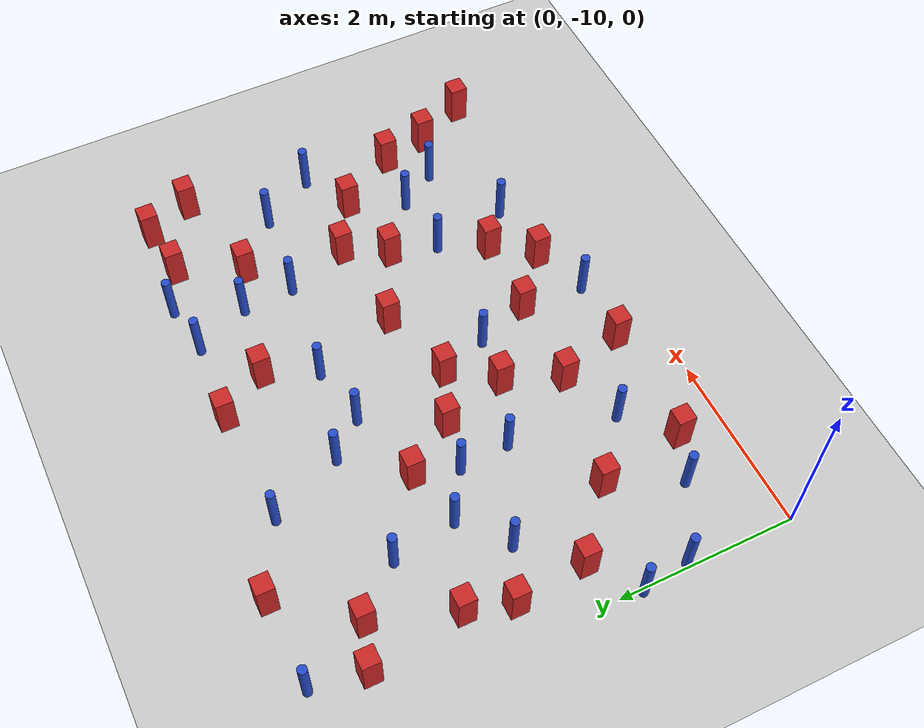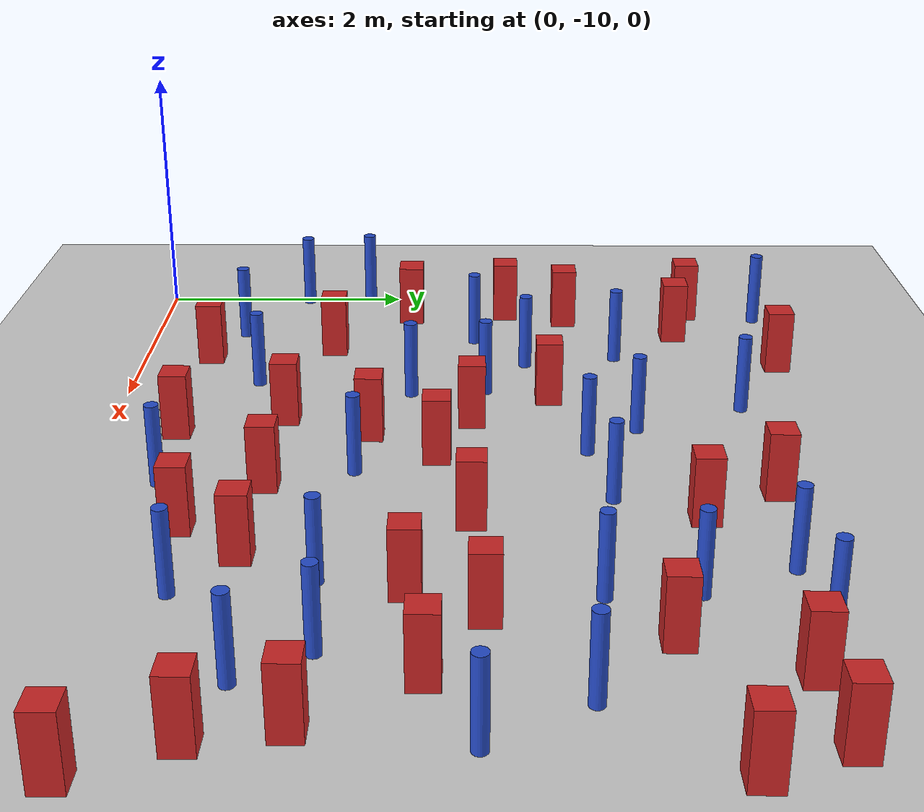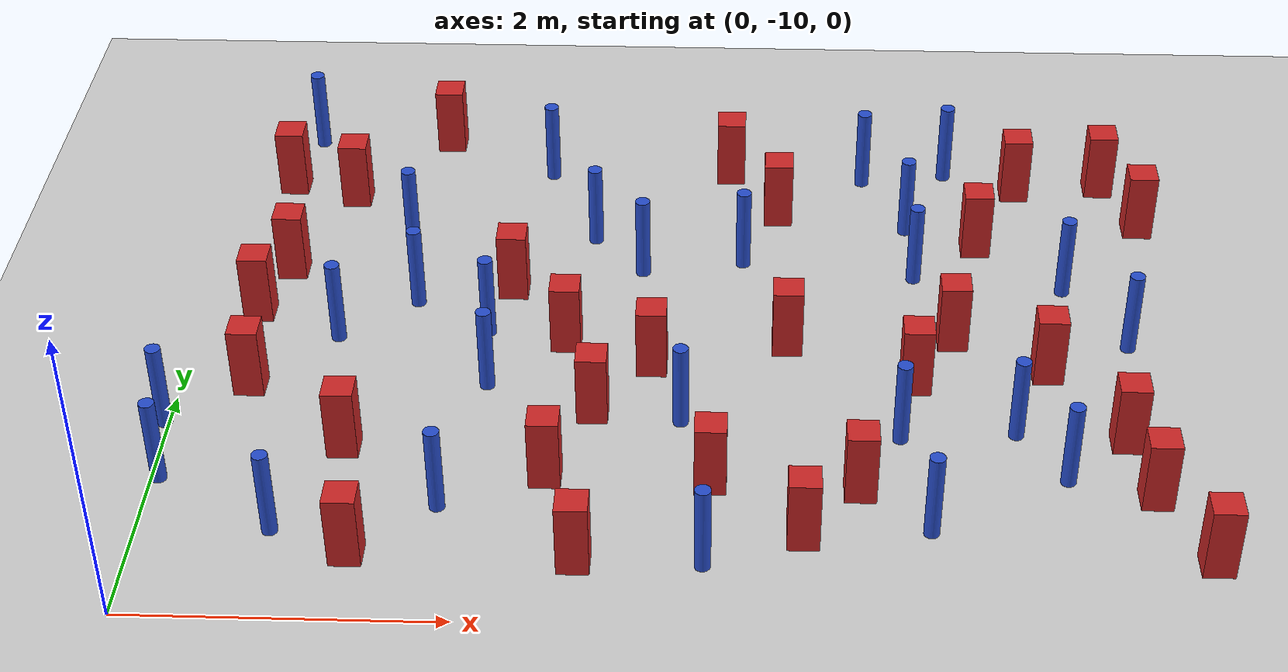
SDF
<sdf version="1.6">
 <world name="default">
  <model name="ground_plane">
   <static>1</static>
   <link name="link">
    <collision name="collision">
     <geometry><plane><normal>0 0 1</normal><size>100 100</size></plane></geometry>
     <surface><friction><ode><mu>100</mu><mu2>50</mu2></ode></friction></surface>
    </collision>
    <visual name="visual">
     <cast_shadows>0</cast_shadows>
     <geometry><plane><normal>0 0 1</normal><size>100 100</size></plane></geometry>
     <material>
      <ambient>1.0 1.0 1.0 1.0</ambient>
      <diffuse>0.8 0.8 0.8 1.0</diffuse>
      <specular>0.01 0.01 0.01 1.000000</specular>
     </material>
    </visual>
   </link>
  </model>
  <model name="square_post_obstacle1">
   <static>true</static>
   <pose>0.525106642225 -6.55552689009 8.22691968438e-08 7.22125133819e-06 -7.54495500217e-07 2.29674213826e-05</pose>
   <link name="link">
    <pose>0 0 0.25 0 -0 0</pose>
    <inertial>
     <mass>100</mass>
     <inertia>
      <ixx>0.166667</ixx>
      <ixy>0</ixy>
      <ixz>0</ixz>
      <iyy>0.166667</iyy>
      <iyz>0</iyz>
      <izz>0.166667</izz>
     </inertia>
    </inertial>
    <collision name="collision"><geometry><box><size>.2 .2 .5</size></box></geometry></collision>
    <visual name="visual">
     <geometry><box><size>.2 .2 .5</size></box></geometry>
     <material>
      <script><name>Gazebo/Red</name><uri>file://media/materials/scripts/gazebo.material</uri></script>
     </material>
    </visual>
   </link>
  </model>
  <model name="square_post_obstacle6">
   <static>true</static>
   <pose>0.843098504361 -5.64925832807 8.22691968438e-08 7.22125133819e-06 -7.54495500217e-07 2.29674213826e-05</pose>
   <link name="link">
    <pose>0 0 0.25 0 -0 0</pose>
    <inertial>
     <mass>100</mass>
     <inertia>
      <ixx>0.166667</ixx>
      <ixy>0</ixy>
      <ixz>0</ixz>
      <iyy>0.166667</iyy>
      <iyz>0</iyz>
      <izz>0.166667</izz>
     </inertia>
    </inertial>
    <collision name="collision"><geometry><box><size>.2 .2 .5</size></box></geometry></collision>
    <visual name="visual">
     <geometry><box><size>.2 .2 .5</size></box></geometry>
     <material>
      <script><name>Gazebo/Red</name><uri>file://media/materials/scripts/gazebo.material</uri></script>
     </material>
    </visual>
   </link>
  </model>
  <model name="pole_obstacle6">
   <static>true</static>
   <pose>2.61312174763 -6.12198666901 2.88873142074e-08 -9.90536689859e-09 4.60219948989e-07 -1.20965994961e-07</pose>
   <link name="link">
    <pose>0 0 0.3 0 -0 0</pose>
    <inertial>
     <mass>1</mass>
     <inertia><ixx>0.145833</ixx><ixy>0</ixy><ixz>0</ixz><iyy>0.145833</iyy><iyz>0</iyz><izz>0.125</izz></inertia>
    </inertial>
    <collision name="collision">
     <geometry><cylinder><radius>0.05</radius><length>.6</length></cylinder></geometry>
    </collision>
    <visual name="visual">
     <geometry><cylinder><radius>0.05</radius><length>.6</length></cylinder></geometry>
     <material>
      <script><name>Gazebo/Blue</name><uri>file://media/materials/scripts/gazebo.material</uri></script>
     </material>
    </visual>
   </link>
  </model>
  <model name="pole_obstacle7">
   <static>true</static>
   <pose>1.99816987325 -7.80242204155 2.88873142074e-08 -9.9053668918e-09 4.60219949005e-07 -1.20965994951e-07</pose>
   <link name="link">
    <pose>0 0 0.3 0 -0 0</pose>
    <inertial>
     <mass>1</mass>
     <inertia><ixx>0.145833</ixx><ixy>0</ixy><ixz>0</ixz><iyy>0.145833</iyy><iyz>0</iyz><izz>0.125</izz></inertia>
    </inertial>
    <collision name="collision">
     <geometry><cylinder><radius>0.05</radius><length>.6</length></cylinder></geometry>
    </collision>
    <visual name="visual">
     <geometry><cylinder><radius>0.05</radius><length>.6</length></cylinder></geometry>
     <material>
      <script><name>Gazebo/Blue</name><uri>file://media/materials/scripts/gazebo.material</uri></script>
     </material>
    </visual>
   </link>
  </model>
  <model name="pole_obstacle18">
   <static>true</static>
   <pose>1.43870255928 -6.90768507503 2.88873142074e-08 -9.90536689852e-09 4.60219948989e-07 -1.2096599496e-07</pose>
   <link name="link">
    <pose>0 0 0.3 0 -0 0</pose>
    <inertial>
     <mass>1</mass>
     <inertia><ixx>0.145833</ixx><ixy>0</ixy><ixz>0</ixz><iyy>0.145833</iyy><iyz>0</iyz><izz>0.125</izz></inertia>
    </inertial>
    <collision name="collision">
     <geometry><cylinder><radius>0.05</radius><length>.6</length></cylinder></geometry>
    </collision>
    <visual name="visual">
     <geometry><cylinder><radius>0.05</radius><length>.6</length></cylinder></geometry>
     <material>
      <script><name>Gazebo/Blue</name><uri>file://media/materials/scripts/gazebo.material</uri></script>
     </material>
    </visual>
   </link>
  </model>
  <model name="square_post_obstacle28">
   <static>true</static>
   <pose>6.49972248512 -9.39431967906 8.22691968438e-08 7.22125133819e-06 -7.54495500217e-07 2.29674213826e-05</pose>
   <link name="link">
    <pose>0 0 0.25 0 -0 0</pose>
    <inertial>
     <mass>100</mass>
     <inertia>
      <ixx>0.166667</ixx>
      <ixy>0</ixy>
      <ixz>0</ixz>
      <iyy>0.166667</iyy>
      <iyz>0</iyz>
      <izz>0.166667</izz>
     </inertia>
    </inertial>
    <collision name="collision"><geometry><box><size>.2 .2 .5</size></box></geometry></collision>
    <visual name="visual">
     <geometry><box><size>.2 .2 .5</size></box></geometry>
     <material>
      <script><name>Gazebo/Red</name><uri>file://media/materials/scripts/gazebo.material</uri></script>
     </material>
    </visual>
   </link>
  </model>
  <model name="pole_obstacle21">
   <static>true</static>
   <pose>5.85971524319 -6.65682981712 2.88873142074e-08 -9.90536690842e-09 4.60219948965e-07 -1.20965994976e-07</pose>
   <link name="link">
    <pose>0 0 0.3 0 -0 0</pose>
    <inertial>
     <mass>1</mass>
     <inertia><ixx>0.145833</ixx><ixy>0</ixy><ixz>0</ixz><iyy>0.145833</iyy><iyz>0</iyz><izz>0.125</izz></inertia>
    </inertial>
    <collision name="collision">
     <geometry><cylinder><radius>0.05</radius><length>.6</length></cylinder></geometry>
    </collision>
    <visual name="visual">
     <geometry><cylinder><radius>0.05</radius><length>.6</length></cylinder></geometry>
     <material>
      <script><name>Gazebo/Blue</name><uri>file://media/materials/scripts/gazebo.material</uri></script>
     </material>
    </visual>
   </link>
  </model>
  <model name="square_post_obstacle33">
   <static>true</static>
   <pose>4.79577057183 -7.72412297338 8.22691968438e-08 7.2212513382e-06 -7.54495500217e-07 2.29674213826e-05</pose>
   <link name="link">
    <pose>0 0 0.25 0 -0 0</pose>
    <inertial>
     <mass>100</mass>
     <inertia>
      <ixx>0.166667</ixx>
      <ixy>0</ixy>
      <ixz>0</ixz>
      <iyy>0.166667</iyy>
      <iyz>0</iyz>
      <izz>0.166667</izz>
     </inertia>
    </inertial>
    <collision name="collision"><geometry><box><size>.2 .2 .5</size></box></geometry></collision>
    <visual name="visual">
     <geometry><box><size>.2 .2 .5</size></box></geometry>
     <material>
      <script><name>Gazebo/Red</name><uri>file://media/materials/scripts/gazebo.material</uri></script>
     </material>
    </visual>
   </link>
  </model>
  <model name="pole_obstacle28">
   <static>true</static>
   <pose>5.69868577912 -8.65366455733 2.88873142074e-08 -9.9053668967e-09 4.60219948993e-07 -1.20965994957e-07</pose>
   <link name="link">
    <pose>0 0 0.3 0 -0 0</pose>
    <inertial>
     <mass>1</mass>
     <inertia><ixx>0.145833</ixx><ixy>0</ixy><ixz>0</ixz><iyy>0.145833</iyy><iyz>0</iyz><izz>0.125</izz></inertia>
    </inertial>
    <collision name="collision">
     <geometry><cylinder><radius>0.05</radius><length>.6</length></cylinder></geometry>
    </collision>
    <visual name="visual">
     <geometry><cylinder><radius>0.05</radius><length>.6</length></cylinder></geometry>
     <material>
      <script><name>Gazebo/Blue</name><uri>file://media/materials/scripts/gazebo.material</uri></script>
     </material>
    </visual>
   </link>
  </model>
  <model name="square_post_obstacle45">
   <static>true</static>
   <pose>4.40191746803 -8.79270947836 8.22691968438e-08 7.2212513382e-06 -7.54495500217e-07 2.29674213826e-05</pose>
   <link name="link">
    <pose>0 0 0.25 0 -0 0</pose>
    <inertial>
     <mass>100</mass>
     <inertia>
      <ixx>0.166667</ixx>
      <ixy>0</ixy>
      <ixz>0</ixz>
      <iyy>0.166667</iyy>
      <iyz>0</iyz>
      <izz>0.166667</izz>
     </inertia>
    </inertial>
    <collision name="collision"><geometry><box><size>.2 .2 .5</size></box></geometry></collision>
    <visual name="visual">
     <geometry><box><size>.2 .2 .5</size></box></geometry>
     <material>
      <script><name>Gazebo/Red</name><uri>file://media/materials/scripts/gazebo.material</uri></script>
     </material>
    </visual>
   </link>
  </model>
  <model name="square_post_obstacle48">
   <static>true</static>
   <pose>2.67671460895 -9.48287255604 8.22691968438e-08 7.22125133819e-06 -7.54495500217e-07 2.29674213826e-05</pose>
   <link name="link">
    <pose>0 0 0.25 0 -0 0</pose>
    <inertial>
     <mass>100</mass>
     <inertia>
      <ixx>0.166667</ixx>
      <ixy>0</ixy>
      <ixz>0</ixz>
      <iyy>0.166667</iyy>
      <iyz>0</iyz>
      <izz>0.166667</izz>
     </inertia>
    </inertial>
    <collision name="collision"><geometry><box><size>.2 .2 .5</size></box></geometry></collision>
    <visual name="visual">
     <geometry><box><size>.2 .2 .5</size></box></geometry>
     <material>
      <script><name>Gazebo/Red</name><uri>file://media/materials/scripts/gazebo.material</uri></script>
     </material>
    </visual>
   </link>
  </model>
  <model name="pole_obstacle46">
   <static>true</static>
   <pose>0.819724443557 -9.24951704208 2.88873142074e-08 -9.90536690779e-09 4.60219948967e-07 -1.20965994975e-07</pose>
   <link name="link">
    <pose>0 0 0.3 0 -0 0</pose>
    <inertial>
     <mass>1</mass>
     <inertia><ixx>0.145833</ixx><ixy>0</ixy><ixz>0</ixz><iyy>0.145833</iyy><iyz>0</iyz><izz>0.125</izz></inertia>
    </inertial>
    <collision name="collision">
     <geometry><cylinder><radius>0.05</radius><length>.6</length></cylinder></geometry>
    </collision>
    <visual name="visual">
     <geometry><cylinder><radius>0.05</radius><length>.6</length></cylinder></geometry>
     <material>
      <script><name>Gazebo/Blue</name><uri>file://media/materials/scripts/gazebo.material</uri></script>
     </material>
    </visual>
   </link>
  </model>
  <model name="pole_obstacle48">
   <static>true</static>
   <pose>4.84135605213 -6.53500169922 2.88873142074e-08 -9.90536690842e-09 4.60219948965e-07 -1.20965994976e-07</pose>
   <link name="link">
    <pose>0 0 0.3 0 -0 0</pose>
    <inertial>
     <mass>1</mass>
     <inertia><ixx>0.145833</ixx><ixy>0</ixy><ixz>0</ixz><iyy>0.145833</iyy><iyz>0</iyz><izz>0.125</izz></inertia>
    </inertial>
    <collision name="collision">
     <geometry><cylinder><radius>0.05</radius><length>.6</length></cylinder></geometry>
    </collision>
    <visual name="visual">
     <geometry><cylinder><radius>0.05</radius><length>.6</length></cylinder></geometry>
     <material>
      <script><name>Gazebo/Blue</name><uri>file://media/materials/scripts/gazebo.material</uri></script>
     </material>
    </visual>
   </link>
  </model>
  <model name="square_post_obstacle49">
   <static>true</static>
   <pose>2.08355022694 -6.74759900342 8.22691968438e-08 7.22125133819e-06 -7.54495500217e-07 2.29674213826e-05</pose>
   <link name="link">
    <pose>0 0 0.25 0 -0 0</pose>
    <inertial>
     <mass>100</mass>
     <inertia>
      <ixx>0.166667</ixx>
      <ixy>0</ixy>
      <ixz>0</ixz>
      <iyy>0.166667</iyy>
      <iyz>0</iyz>
      <izz>0.166667</izz>
     </inertia>
    </inertial>
    <collision name="collision"><geometry><box><size>.2 .2 .5</size></box></geometry></collision>
    <visual name="visual">
     <geometry><box><size>.2 .2 .5</size></box></geometry>
     <material>
      <script><name>Gazebo/Red</name><uri>file://media/materials/scripts/gazebo.material</uri></script>
     </material>
    </visual>
   </link>
  </model>
  <model name="square_post_obstacle52">
   <static>true</static>
   <pose>2.48559389934 -7.33358615994 8.22691968438e-08 7.2212513382e-06 -7.54495500217e-07 2.29674213826e-05</pose>
   <link name="link">
    <pose>0 0 0.25 0 -0 0</pose>
    <inertial>
     <mass>100</mass>
     <inertia>
      <ixx>0.166667</ixx>
      <ixy>0</ixy>
      <ixz>0</ixz>
      <iyy>0.166667</iyy>
      <iyz>0</iyz>
      <izz>0.166667</izz>
     </inertia>
    </inertial>
    <collision name="collision"><geometry><box><size>.2 .2 .5</size></box></geometry></collision>
    <visual name="visual">
     <geometry><box><size>.2 .2 .5</size></box></geometry>
     <material>
      <script><name>Gazebo/Red</name><uri>file://media/materials/scripts/gazebo.material</uri></script>
     </material>
    </visual>
   </link>
  </model>
  <model name="pole_obstacle53">
   <static>true</static>
   <pose>2.96297468907 -6.50713197876 2.88873142074e-08 -9.90536689859e-09 4.60219948989e-07 -1.20965994961e-07</pose>
   <link name="link">
    <pose>0 0 0.3 0 -0 0</pose>
    <inertial>
     <mass>1</mass>
     <inertia><ixx>0.145833</ixx><ixy>0</ixy><ixz>0</ixz><iyy>0.145833</iyy><iyz>0</iyz><izz>0.125</izz></inertia>
    </inertial>
    <collision name="collision">
     <geometry><cylinder><radius>0.05</radius><length>.6</length></cylinder></geometry>
    </collision>
    <visual name="visual">
     <geometry><cylinder><radius>0.05</radius><length>.6</length></cylinder></geometry>
     <material>
      <script><name>Gazebo/Blue</name><uri>file://media/materials/scripts/gazebo.material</uri></script>
     </material>
    </visual>
   </link>
  </model>
  <model name="square_post_obstacle61">
   <static>true</static>
   <pose>3.90253928913 -5.80376337395 8.22691968438e-08 7.2212513382e-06 -7.54495500217e-07 2.29674213826e-05</pose>
   <link name="link">
    <pose>0 0 0.25 0 -0 0</pose>
    <inertial>
     <mass>100</mass>
     <inertia>
      <ixx>0.166667</ixx>
      <ixy>0</ixy>
      <ixz>0</ixz>
      <iyy>0.166667</iyy>
      <iyz>0</iyz>
      <izz>0.166667</izz>
     </inertia>
    </inertial>
    <collision name="collision"><geometry><box><size>.2 .2 .5</size></box></geometry></collision>
    <visual name="visual">
     <geometry><box><size>.2 .2 .5</size></box></geometry>
     <material>
      <script><name>Gazebo/Red</name><uri>file://media/materials/scripts/gazebo.material</uri></script>
     </material>
    </visual>
   </link>
  </model>
  <model name="square_post_obstacle63">
   <static>true</static>
   <pose>2.44928904072 -8.71424911678 8.22691968438e-08 7.22125133819e-06 -7.54495500217e-07 2.29674213826e-05</pose>
   <link name="link">
    <pose>0 0 0.25 0 -0 0</pose>
    <inertial>
     <mass>100</mass>
     <inertia>
      <ixx>0.166667</ixx>
      <ixy>0</ixy>
      <ixz>0</ixz>
      <iyy>0.166667</iyy>
      <iyz>0</iyz>
      <izz>0.166667</izz>
     </inertia>
    </inertial>
    <collision name="collision"><geometry><box><size>.2 .2 .5</size></box></geometry></collision>
    <visual name="visual">
     <geometry><box><size>.2 .2 .5</size></box></geometry>
     <material>
      <script><name>Gazebo/Red</name><uri>file://media/materials/scripts/gazebo.material</uri></script>
     </material>
    </visual>
   </link>
  </model>
  <model name="pole_obstacle66">
   <static>true</static>
   <pose>6.23749779976 -7.28116338415 2.88873142074e-08 -9.90536690842e-09 4.60219948965e-07 -1.20965994976e-07</pose>
   <link name="link">
    <pose>0 0 0.3 0 -0 0</pose>
    <inertial>
     <mass>1</mass>
     <inertia><ixx>0.145833</ixx><ixy>0</ixy><ixz>0</ixz><iyy>0.145833</iyy><iyz>0</iyz><izz>0.125</izz></inertia>
    </inertial>
    <collision name="collision">
     <geometry><cylinder><radius>0.05</radius><length>.6</length></cylinder></geometry>
    </collision>
    <visual name="visual">
     <geometry><cylinder><radius>0.05</radius><length>.6</length></cylinder></geometry>
     <material>
      <script><name>Gazebo/Blue</name><uri>file://media/materials/scripts/gazebo.material</uri></script>
     </material>
    </visual>
   </link>
  </model>
  <model name="pole_obstacle67">
   <static>true</static>
   <pose>4.82284806937 -9.15295095249 2.88873142074e-08 -9.9053668967e-09 4.60219948993e-07 -1.20965994957e-07</pose>
   <link name="link">
    <pose>0 0 0.3 0 -0 0</pose>
    <inertial>
     <mass>1</mass>
     <inertia><ixx>0.145833</ixx><ixy>0</ixy><ixz>0</ixz><iyy>0.145833</iyy><iyz>0</iyz><izz>0.125</izz></inertia>
    </inertial>
    <collision name="collision">
     <geometry><cylinder><radius>0.05</radius><length>.6</length></cylinder></geometry>
    </collision>
    <visual name="visual">
     <geometry><cylinder><radius>0.05</radius><length>.6</length></cylinder></geometry>
     <material>
      <script><name>Gazebo/Blue</name><uri>file://media/materials/scripts/gazebo.material</uri></script>
     </material>
    </visual>
   </link>
  </model>
  <model name="square_post_obstacle73">
   <static>true</static>
   <pose>6.10598362654 -8.2753170289 8.22691968438e-08 7.22125133819e-06 -7.54495500217e-07 2.29674213826e-05</pose>
   <link name="link">
    <pose>0 0 0.25 0 -0 0</pose>
    <inertial>
     <mass>100</mass>
     <inertia>
      <ixx>0.166667</ixx>
      <ixy>0</ixy>
      <ixz>0</ixz>
      <iyy>0.166667</iyy>
      <iyz>0</iyz>
      <izz>0.166667</izz>
     </inertia>
    </inertial>
    <collision name="collision"><geometry><box><size>.2 .2 .5</size></box></geometry></collision>
    <visual name="visual">
     <geometry><box><size>.2 .2 .5</size></box></geometry>
     <material>
      <script><name>Gazebo/Red</name><uri>file://media/materials/scripts/gazebo.material</uri></script>
     </material>
    </visual>
   </link>
  </model>
  <model name="pole_obstacle71">
   <static>true</static>
   <pose>1.31063923494 -6.1774848266 2.88873142074e-08 -9.90536689852e-09 4.60219948989e-07 -1.2096599496e-07</pose>
   <link name="link">
    <pose>0 0 0.3 0 -0 0</pose>
    <inertial>
     <mass>1</mass>
     <inertia><ixx>0.145833</ixx><ixy>0</ixy><ixz>0</ixz><iyy>0.145833</iyy><iyz>0</iyz><izz>0.125</izz></inertia>
    </inertial>
    <collision name="collision">
     <geometry><cylinder><radius>0.05</radius><length>.6</length></cylinder></geometry>
    </collision>
    <visual name="visual">
     <geometry><cylinder><radius>0.05</radius><length>.6</length></cylinder></geometry>
     <material>
      <script><name>Gazebo/Blue</name><uri>file://media/materials/scripts/gazebo.material</uri></script>
     </material>
    </visual>
   </link>
  </model>
  <model name="pole_obstacle80">
   <static>true</static>
   <pose>0.949963794975 -7.31686127916 2.88873142074e-08 -9.90536689661e-09 4.60219948993e-07 -1.20965994957e-07</pose>
   <link name="link">
    <pose>0 0 0.3 0 -0 0</pose>
    <inertial>
     <mass>1</mass>
     <inertia><ixx>0.145833</ixx><ixy>0</ixy><ixz>0</ixz><iyy>0.145833</iyy><iyz>0</iyz><izz>0.125</izz></inertia>
    </inertial>
    <collision name="collision">
     <geometry><cylinder><radius>0.05</radius><length>.6</length></cylinder></geometry>
    </collision>
    <visual name="visual">
     <geometry><cylinder><radius>0.05</radius><length>.6</length></cylinder></geometry>
     <material>
      <script><name>Gazebo/Blue</name><uri>file://media/materials/scripts/gazebo.material</uri></script>
     </material>
    </visual>
   </link>
  </model>
  <model name="pole_obstacle83">
   <static>true</static>
   <pose>1.95238953807 -7.23096137386 2.88873142074e-08 -9.9053668918e-09 4.60219949005e-07 -1.20965994951e-07</pose>
   <link name="link">
    <pose>0 0 0.3 0 -0 0</pose>
    <inertial>
     <mass>1</mass>
     <inertia><ixx>0.145833</ixx><ixy>0</ixy><ixz>0</ixz><iyy>0.145833</iyy><iyz>0</iyz><izz>0.125</izz></inertia>
    </inertial>
    <collision name="collision">
     <geometry><cylinder><radius>0.05</radius><length>.6</length></cylinder></geometry>
    </collision>
    <visual name="visual">
     <geometry><cylinder><radius>0.05</radius><length>.6</length></cylinder></geometry>
     <material>
      <script><name>Gazebo/Blue</name><uri>file://media/materials/scripts/gazebo.material</uri></script>
     </material>
    </visual>
   </link>
  </model>
  <model name="square_post_obstacle81">
   <static>true</static>
   <pose>3.56062485106 -5.26579493517 8.22691968438e-08 7.2212513382e-06 -7.54495500217e-07 2.29674213826e-05</pose>
   <link name="link">
    <pose>0 0 0.25 0 -0 0</pose>
    <inertial>
     <mass>100</mass>
     <inertia>
      <ixx>0.166667</ixx>
      <ixy>0</ixy>
      <ixz>0</ixz>
      <iyy>0.166667</iyy>
      <iyz>0</iyz>
      <izz>0.166667</izz>
     </inertia>
    </inertial>
    <collision name="collision"><geometry><box><size>.2 .2 .5</size></box></geometry></collision>
    <visual name="visual">
     <geometry><box><size>.2 .2 .5</size></box></geometry>
     <material>
      <script><name>Gazebo/Red</name><uri>file://media/materials/scripts/gazebo.material</uri></script>
     </material>
    </visual>
   </link>
  </model>
  <model name="pole_obstacle91">
   <static>true</static>
   <pose>0.47568651712 -4.90584952564 2.88873142074e-08 -9.90536689616e-09 4.60219948994e-07 -1.20965994955e-07</pose>
   <link name="link">
    <pose>0 0 0.3 0 -0 0</pose>
    <inertial>
     <mass>1</mass>
     <inertia><ixx>0.145833</ixx><ixy>0</ixy><ixz>0</ixz><iyy>0.145833</iyy><iyz>0</iyz><izz>0.125</izz></inertia>
    </inertial>
    <collision name="collision">
     <geometry><cylinder><radius>0.05</radius><length>.6</length></cylinder></geometry>
    </collision>
    <visual name="visual">
     <geometry><cylinder><radius>0.05</radius><length>.6</length></cylinder></geometry>
     <material>
      <script><name>Gazebo/Blue</name><uri>file://media/materials/scripts/gazebo.material</uri></script>
     </material>
    </visual>
   </link>
  </model>
  <model name="square_post_obstacle84">
   <static>true</static>
   <pose>0.456005419598 -7.85784118782 8.22691968438e-08 7.2212513382e-06 -7.54495500217e-07 2.29674213826e-05</pose>
   <link name="link">
    <pose>0 0 0.25 0 -0 0</pose>
    <inertial>
     <mass>100</mass>
     <inertia>
      <ixx>0.166667</ixx>
      <ixy>0</ixy>
      <ixz>0</ixz>
      <iyy>0.166667</iyy>
      <iyz>0</iyz>
      <izz>0.166667</izz>
     </inertia>
    </inertial>
    <collision name="collision"><geometry><box><size>.2 .2 .5</size></box></geometry></collision>
    <visual name="visual">
     <geometry><box><size>.2 .2 .5</size></box></geometry>
     <material>
      <script><name>Gazebo/Red</name><uri>file://media/materials/scripts/gazebo.material</uri></script>
     </material>
    </visual>
   </link>
  </model>
  <model name="square_post_obstacle85">
   <static>true</static>
   <pose>0.364005806691 -5.49626707636 8.22691968438e-08 7.22125133819e-06 -7.54495500217e-07 2.29674213826e-05</pose>
   <link name="link">
    <pose>0 0 0.25 0 -0 0</pose>
    <inertial>
     <mass>100</mass>
     <inertia>
      <ixx>0.166667</ixx>
      <ixy>0</ixy>
      <ixz>0</ixz>
      <iyy>0.166667</iyy>
      <iyz>0</iyz>
      <izz>0.166667</izz>
     </inertia>
    </inertial>
    <collision name="collision"><geometry><box><size>.2 .2 .5</size></box></geometry></collision>
    <visual name="visual">
     <geometry><box><size>.2 .2 .5</size></box></geometry>
     <material>
      <script><name>Gazebo/Red</name><uri>file://media/materials/scripts/gazebo.material</uri></script>
     </material>
    </visual>
   </link>
  </model>
  <model name="pole_obstacle100">
   <static>true</static>
   <pose>4.80972914708 -5.94815869247 2.88873142074e-08 -9.90536690842e-09 4.60219948965e-07 -1.20965994976e-07</pose>
   <link name="link">
    <pose>0 0 0.3 0 -0 0</pose>
    <inertial>
     <mass>1</mass>
     <inertia><ixx>0.145833</ixx><ixy>0</ixy><ixz>0</ixz><iyy>0.145833</iyy><iyz>0</iyz><izz>0.125</izz></inertia>
    </inertial>
    <collision name="collision">
     <geometry><cylinder><radius>0.05</radius><length>.6</length></cylinder></geometry>
    </collision>
    <visual name="visual">
     <geometry><cylinder><radius>0.05</radius><length>.6</length></cylinder></geometry>
     <material>
      <script><name>Gazebo/Blue</name><uri>file://media/materials/scripts/gazebo.material</uri></script>
     </material>
    </visual>
   </link>
  </model>
  <model name="pole_obstacle103">
   <static>true</static>
   <pose>5.12659915417 -5.22898595982 2.88873142074e-08 -9.90536690842e-09 4.60219948965e-07 -1.20965994976e-07</pose>
   <link name="link">
    <pose>0 0 0.3 0 -0 0</pose>
    <inertial>
     <mass>1</mass>
     <inertia><ixx>0.145833</ixx><ixy>0</ixy><ixz>0</ixz><iyy>0.145833</iyy><iyz>0</iyz><izz>0.125</izz></inertia>
    </inertial>
    <collision name="collision">
     <geometry><cylinder><radius>0.05</radius><length>.6</length></cylinder></geometry>
    </collision>
    <visual name="visual">
     <geometry><cylinder><radius>0.05</radius><length>.6</length></cylinder></geometry>
     <material>
      <script><name>Gazebo/Blue</name><uri>file://media/materials/scripts/gazebo.material</uri></script>
     </material>
    </visual>
   </link>
  </model>
  <model name="square_post_obstacle93">
   <static>true</static>
   <pose>5.29263643594 -6.1553915044 8.22691968438e-08 7.2212513382e-06 -7.54495500217e-07 2.29674213826e-05</pose>
   <link name="link">
    <pose>0 0 0.25 0 -0 0</pose>
    <inertial>
     <mass>100</mass>
     <inertia>
      <ixx>0.166667</ixx>
      <ixy>0</ixy>
      <ixz>0</ixz>
      <iyy>0.166667</iyy>
      <iyz>0</iyz>
      <izz>0.166667</izz>
     </inertia>
    </inertial>
    <collision name="collision"><geometry><box><size>.2 .2 .5</size></box></geometry></collision>
    <visual name="visual">
     <geometry><box><size>.2 .2 .5</size></box></geometry>
     <material>
      <script><name>Gazebo/Red</name><uri>file://media/materials/scripts/gazebo.material</uri></script>
     </material>
    </visual>
   </link>
  </model>
  <model name="square_post_obstacle95">
   <static>true</static>
   <pose>5.06491770346 -7.24724469354 8.22691968438e-08 7.22125133819e-06 -7.54495500217e-07 2.29674213826e-05</pose>
   <link name="link">
    <pose>0 0 0.25 0 -0 0</pose>
    <inertial>
     <mass>100</mass>
     <inertia>
      <ixx>0.166667</ixx>
      <ixy>0</ixy>
      <ixz>0</ixz>
      <iyy>0.166667</iyy>
      <iyz>0</iyz>
      <izz>0.166667</izz>
     </inertia>
    </inertial>
    <collision name="collision"><geometry><box><size>.2 .2 .5</size></box></geometry></collision>
    <visual name="visual">
     <geometry><box><size>.2 .2 .5</size></box></geometry>
     <material>
      <script><name>Gazebo/Red</name><uri>file://media/materials/scripts/gazebo.material</uri></script>
     </material>
    </visual>
   </link>
  </model>
  <model name="pole_obstacle108">
   <static>true</static>
   <pose>3.27401010949 -8.14530524495 2.88873142074e-08 -9.90536692318e-09 4.6021994893e-07 -1.20965994988e-07</pose>
   <link name="link">
    <pose>0 0 0.3 0 -0 0</pose>
    <inertial>
     <mass>1</mass>
     <inertia><ixx>0.145833</ixx><ixy>0</ixy><ixz>0</ixz><iyy>0.145833</iyy><iyz>0</iyz><izz>0.125</izz></inertia>
    </inertial>
    <collision name="collision">
     <geometry><cylinder><radius>0.05</radius><length>.6</length></cylinder></geometry>
    </collision>
    <visual name="visual">
     <geometry><cylinder><radius>0.05</radius><length>.6</length></cylinder></geometry>
     <material>
      <script><name>Gazebo/Blue</name><uri>file://media/materials/scripts/gazebo.material</uri></script>
     </material>
    </visual>
   </link>
  </model>
  <model name="square_post_obstacle98">
   <static>true</static>
   <pose>6.46445348556 -5.88337702753 8.22691968438e-08 7.2212513382e-06 -7.54495500217e-07 2.29674213826e-05</pose>
   <link name="link">
    <pose>0 0 0.25 0 -0 0</pose>
    <inertial>
     <mass>100</mass>
     <inertia>
      <ixx>0.166667</ixx>
      <ixy>0</ixy>
      <ixz>0</ixz>
      <iyy>0.166667</iyy>
      <iyz>0</iyz>
      <izz>0.166667</izz>
     </inertia>
    </inertial>
    <collision name="collision"><geometry><box><size>.2 .2 .5</size></box></geometry></collision>
    <visual name="visual">
     <geometry><box><size>.2 .2 .5</size></box></geometry>
     <material>
      <script><name>Gazebo/Red</name><uri>file://media/materials/scripts/gazebo.material</uri></script>
     </material>
    </visual>
   </link>
  </model>
  <model name="square_post_obstacle103">
   <static>true</static>
   <pose>6.21743768204 -8.80868946574 8.22691968438e-08 7.2212513382e-06 -7.54495500217e-07 2.29674213826e-05</pose>
   <link name="link">
    <pose>0 0 0.25 0 -0 0</pose>
    <inertial>
     <mass>100</mass>
     <inertia>
      <ixx>0.166667</ixx>
      <ixy>0</ixy>
      <ixz>0</ixz>
      <iyy>0.166667</iyy>
      <iyz>0</iyz>
      <izz>0.166667</izz>
     </inertia>
    </inertial>
    <collision name="collision"><geometry><box><size>.2 .2 .5</size></box></geometry></collision>
    <visual name="visual">
     <geometry><box><size>.2 .2 .5</size></box></geometry>
     <material>
      <script><name>Gazebo/Red</name><uri>file://media/materials/scripts/gazebo.material</uri></script>
     </material>
    </visual>
   </link>
  </model>
  <model name="square_post_obstacle105">
   <static>true</static>
   <pose>0.376080285025 -7.05154102384 8.22691968438e-08 7.22125133819e-06 -7.54495500217e-07 2.29674213826e-05</pose>
   <link name="link">
    <pose>0 0 0.25 0 -0 0</pose>
    <inertial>
     <mass>100</mass>
     <inertia>
      <ixx>0.166667</ixx>
      <ixy>0</ixy>
      <ixz>0</ixz>
      <iyy>0.166667</iyy>
      <iyz>0</iyz>
      <izz>0.166667</izz>
     </inertia>
    </inertial>
    <collision name="collision"><geometry><box><size>.2 .2 .5</size></box></geometry></collision>
    <visual name="visual">
     <geometry><box><size>.2 .2 .5</size></box></geometry>
     <material>
      <script><name>Gazebo/Red</name><uri>file://media/materials/scripts/gazebo.material</uri></script>
     </material>
    </visual>
   </link>
  </model>
  <model name="pole_obstacle133">
   <static>true</static>
   <pose>3.65744207087 -6.38120777932 2.88873142074e-08 -9.90536689859e-09 4.60219948989e-07 -1.20965994961e-07</pose>
   <link name="link">
    <pose>0 0 0.3 0 -0 0</pose>
    <inertial>
     <mass>1</mass>
     <inertia><ixx>0.145833</ixx><ixy>0</ixy><ixz>0</ixz><iyy>0.145833</iyy><iyz>0</iyz><izz>0.125</izz></inertia>
    </inertial>
    <collision name="collision">
     <geometry><cylinder><radius>0.05</radius><length>.6</length></cylinder></geometry>
    </collision>
    <visual name="visual">
     <geometry><cylinder><radius>0.05</radius><length>.6</length></cylinder></geometry>
     <material>
      <script><name>Gazebo/Blue</name><uri>file://media/materials/scripts/gazebo.material</uri></script>
     </material>
    </visual>
   </link>
  </model>
  <model name="pole_obstacle138">
   <static>true</static>
   <pose>4.52243807341 -5.32516594797 2.88873142074e-08 -9.90536690842e-09 4.60219948965e-07 -1.20965994976e-07</pose>
   <link name="link">
    <pose>0 0 0.3 0 -0 0</pose>
    <inertial>
     <mass>1</mass>
     <inertia><ixx>0.145833</ixx><ixy>0</ixy><ixz>0</ixz><iyy>0.145833</iyy><iyz>0</iyz><izz>0.125</izz></inertia>
    </inertial>
    <collision name="collision">
     <geometry><cylinder><radius>0.05</radius><length>.6</length></cylinder></geometry>
    </collision>
    <visual name="visual">
     <geometry><cylinder><radius>0.05</radius><length>.6</length></cylinder></geometry>
     <material>
      <script><name>Gazebo/Blue</name><uri>file://media/materials/scripts/gazebo.material</uri></script>
     </material>
    </visual>
   </link>
  </model>
  <model name="square_post_obstacle141">
   <static>true</static>
   <pose>3.06663957994 -7.57907497589 8.22691968438e-08 7.2212513382e-06 -7.54495500217e-07 2.29674213826e-05</pose>
   <link name="link">
    <pose>0 0 0.25 0 -0 0</pose>
    <inertial>
     <mass>100</mass>
     <inertia>
      <ixx>0.166667</ixx>
      <ixy>0</ixy>
      <ixz>0</ixz>
      <iyy>0.166667</iyy>
      <iyz>0</iyz>
      <izz>0.166667</izz>
     </inertia>
    </inertial>
    <collision name="collision"><geometry><box><size>.2 .2 .5</size></box></geometry></collision>
    <visual name="visual">
     <geometry><box><size>.2 .2 .5</size></box></geometry>
     <material>
      <script><name>Gazebo/Red</name><uri>file://media/materials/scripts/gazebo.material</uri></script>
     </material>
    </visual>
   </link>
  </model>
  <model name="square_post_obstacle142">
   <static>true</static>
   <pose>6.24376315525 -5.36547029704 8.22691968438e-08 7.2212513382e-06 -7.54495500217e-07 2.29674213826e-05</pose>
   <link name="link">
    <pose>0 0 0.25 0 -0 0</pose>
    <inertial>
     <mass>100</mass>
     <inertia>
      <ixx>0.166667</ixx>
      <ixy>0</ixy>
      <ixz>0</ixz>
      <iyy>0.166667</iyy>
      <iyz>0</iyz>
      <izz>0.166667</izz>
     </inertia>
    </inertial>
    <collision name="collision"><geometry><box><size>.2 .2 .5</size></box></geometry></collision>
    <visual name="visual">
     <geometry><box><size>.2 .2 .5</size></box></geometry>
     <material>
      <script><name>Gazebo/Red</name><uri>file://media/materials/scripts/gazebo.material</uri></script>
     </material>
    </visual>
   </link>
  </model>
  <model name="square_post_obstacle143">
   <static>true</static>
   <pose>5.66757040205 -7.5865957057 8.22691968438e-08 7.2212513382e-06 -7.54495500217e-07 2.29674213826e-05</pose>
   <link name="link">
    <pose>0 0 0.25 0 -0 0</pose>
    <inertial>
     <mass>100</mass>
     <inertia>
      <ixx>0.166667</ixx>
      <ixy>0</ixy>
      <ixz>0</ixz>
      <iyy>0.166667</iyy>
      <iyz>0</iyz>
      <izz>0.166667</izz>
     </inertia>
    </inertial>
    <collision name="collision"><geometry><box><size>.2 .2 .5</size></box></geometry></collision>
    <visual name="visual">
     <geometry><box><size>.2 .2 .5</size></box></geometry>
     <material>
      <script><name>Gazebo/Red</name><uri>file://media/materials/scripts/gazebo.material</uri></script>
     </material>
    </visual>
   </link>
  </model>
  <model name="pole_obstacle155">
   <static>true</static>
   <pose>-0.03310714614 -8.24897349797 2.88873142074e-08 -9.90536690898e-09 4.60219948964e-07 -1.20965994978e-07</pose>
   <link name="link">
    <pose>0 0 0.3 0 -0 0</pose>
    <inertial>
     <mass>1</mass>
     <inertia><ixx>0.145833</ixx><ixy>0</ixy><ixz>0</ixz><iyy>0.145833</iyy><iyz>0</iyz><izz>0.125</izz></inertia>
    </inertial>
    <collision name="collision">
     <geometry><cylinder><radius>0.05</radius><length>.6</length></cylinder></geometry>
    </collision>
    <visual name="visual">
     <geometry><cylinder><radius>0.05</radius><length>.6</length></cylinder></geometry>
     <material>
      <script><name>Gazebo/Blue</name><uri>file://media/materials/scripts/gazebo.material</uri></script>
     </material>
    </visual>
   </link>
  </model>
  <model name="pole_obstacle164">
   <static>true</static>
   <pose>3.44420654405 -9.48454345862 2.88873142074e-08 -9.90536692318e-09 4.6021994893e-07 -1.20965994988e-07</pose>
   <link name="link">
    <pose>0 0 0.3 0 -0 0</pose>
    <inertial>
     <mass>1</mass>
     <inertia><ixx>0.145833</ixx><ixy>0</ixy><ixz>0</ixz><iyy>0.145833</iyy><iyz>0</iyz><izz>0.125</izz></inertia>
    </inertial>
    <collision name="collision">
     <geometry><cylinder><radius>0.05</radius><length>.6</length></cylinder></geometry>
    </collision>
    <visual name="visual">
     <geometry><cylinder><radius>0.05</radius><length>.6</length></cylinder></geometry>
     <material>
      <script><name>Gazebo/Blue</name><uri>file://media/materials/scripts/gazebo.material</uri></script>
     </material>
    </visual>
   </link>
  </model>
  <model name="pole_obstacle171">
   <static>true</static>
   <pose>5.41299884213 -8.21232040897 2.88873142074e-08 -9.9053668967e-09 4.60219948993e-07 -1.20965994957e-07</pose>
   <link name="link">
    <pose>0 0 0.3 0 -0 0</pose>
    <inertial>
     <mass>1</mass>
     <inertia><ixx>0.145833</ixx><ixy>0</ixy><ixz>0</ixz><iyy>0.145833</iyy><iyz>0</iyz><izz>0.125</izz></inertia>
    </inertial>
    <collision name="collision">
     <geometry><cylinder><radius>0.05</radius><length>.6</length></cylinder></geometry>
    </collision>
    <visual name="visual">
     <geometry><cylinder><radius>0.05</radius><length>.6</length></cylinder></geometry>
     <material>
      <script><name>Gazebo/Blue</name><uri>file://media/materials/scripts/gazebo.material</uri></script>
     </material>
    </visual>
   </link>
  </model>
  <model name="square_post_obstacle163">
   <static>true</static>
   <pose>2.70588220683 -8.07647012635 8.22691968438e-08 7.2212513382e-06 -7.54495500217e-07 2.29674213826e-05</pose>
   <link name="link">
    <pose>0 0 0.25 0 -0 0</pose>
    <inertial>
     <mass>100</mass>
     <inertia>
      <ixx>0.166667</ixx>
      <ixy>0</ixy>
      <ixz>0</ixz>
      <iyy>0.166667</iyy>
      <iyz>0</iyz>
      <izz>0.166667</izz>
     </inertia>
    </inertial>
    <collision name="collision"><geometry><box><size>.2 .2 .5</size></box></geometry></collision>
    <visual name="visual">
     <geometry><box><size>.2 .2 .5</size></box></geometry>
     <material>
      <script><name>Gazebo/Red</name><uri>file://media/materials/scripts/gazebo.material</uri></script>
     </material>
    </visual>
   </link>
  </model>
  <model name="square_post_obstacle164">
   <static>true</static>
   <pose>4.04438969666 -9.23311061499 8.22691968438e-08 7.2212513382e-06 -7.54495500217e-07 2.29674213826e-05</pose>
   <link name="link">
    <pose>0 0 0.25 0 -0 0</pose>
    <inertial>
     <mass>100</mass>
     <inertia>
      <ixx>0.166667</ixx>
      <ixy>0</ixy>
      <ixz>0</ixz>
      <iyy>0.166667</iyy>
      <iyz>0</iyz>
      <izz>0.166667</izz>
     </inertia>
    </inertial>
    <collision name="collision"><geometry><box><size>.2 .2 .5</size></box></geometry></collision>
    <visual name="visual">
     <geometry><box><size>.2 .2 .5</size></box></geometry>
     <material>
      <script><name>Gazebo/Red</name><uri>file://media/materials/scripts/gazebo.material</uri></script>
     </material>
    </visual>
   </link>
  </model>
  <model name="square_post_obstacle171">
   <static>true</static>
   <pose>3.95995057877 -7.33142694563 8.22691968438e-08 7.2212513382e-06 -7.54495500217e-07 2.29674213826e-05</pose>
   <link name="link">
    <pose>0 0 0.25 0 -0 0</pose>
    <inertial>
     <mass>100</mass>
     <inertia>
      <ixx>0.166667</ixx>
      <ixy>0</ixy>
      <ixz>0</ixz>
      <iyy>0.166667</iyy>
      <iyz>0</iyz>
      <izz>0.166667</izz>
     </inertia>
    </inertial>
    <collision name="collision"><geometry><box><size>.2 .2 .5</size></box></geometry></collision>
    <visual name="visual">
     <geometry><box><size>.2 .2 .5</size></box></geometry>
     <material>
      <script><name>Gazebo/Red</name><uri>file://media/materials/scripts/gazebo.material</uri></script>
     </material>
    </visual>
   </link>
  </model>
  <model name="pole_obstacle188">
   <static>true</static>
   <pose>4.67460562904 -8.27435772132 2.88873142074e-08 -9.9053668967e-09 4.60219948993e-07 -1.20965994957e-07</pose>
   <link name="link">
    <pose>0 0 0.3 0 -0 0</pose>
    <inertial>
     <mass>1</mass>
     <inertia><ixx>0.145833</ixx><ixy>0</ixy><ixz>0</ixz><iyy>0.145833</iyy><iyz>0</iyz><izz>0.125</izz></inertia>
    </inertial>
    <collision name="collision">
     <geometry><cylinder><radius>0.05</radius><length>.6</length></cylinder></geometry>
    </collision>
    <visual name="visual">
     <geometry><cylinder><radius>0.05</radius><length>.6</length></cylinder></geometry>
     <material>
      <script><name>Gazebo/Blue</name><uri>file://media/materials/scripts/gazebo.material</uri></script>
     </material>
    </visual>
   </link>
  </model>
  <model name="square_post_obstacle175">
   <static>true</static>
   <pose>1.31668593793 -9.45207147624 8.22691968438e-08 7.22125133819e-06 -7.54495500217e-07 2.29674213826e-05</pose>
   <link name="link">
    <pose>0 0 0.25 0 -0 0</pose>
    <inertial>
     <mass>100</mass>
     <inertia>
      <ixx>0.166667</ixx>
      <ixy>0</ixy>
      <ixz>0</ixz>
      <iyy>0.166667</iyy>
      <iyz>0</iyz>
      <izz>0.166667</izz>
     </inertia>
    </inertial>
    <collision name="collision"><geometry><box><size>.2 .2 .5</size></box></geometry></collision>
    <visual name="visual">
     <geometry><box><size>.2 .2 .5</size></box></geometry>
     <material>
      <script><name>Gazebo/Red</name><uri>file://media/materials/scripts/gazebo.material</uri></script>
     </material>
    </visual>
   </link>
  </model>
  <model name="square_post_obstacle177">
   <static>true</static>
   <pose>1.15704463473 -8.46210637872 8.22691968438e-08 7.22125133819e-06 -7.54495500217e-07 2.29674213826e-05</pose>
   <link name="link">
    <pose>0 0 0.25 0 -0 0</pose>
    <inertial>
     <mass>100</mass>
     <inertia>
      <ixx>0.166667</ixx>
      <ixy>0</ixy>
      <ixz>0</ixz>
      <iyy>0.166667</iyy>
      <iyz>0</iyz>
      <izz>0.166667</izz>
     </inertia>
    </inertial>
    <collision name="collision"><geometry><box><size>.2 .2 .5</size></box></geometry></collision>
    <visual name="visual">
     <geometry><box><size>.2 .2 .5</size></box></geometry>
     <material>
      <script><name>Gazebo/Red</name><uri>file://media/materials/scripts/gazebo.material</uri></script>
     </material>
    </visual>
   </link>
  </model>
  <model name="square_post_obstacle180">
   <static>true</static>
   <pose>5.6245695392 -5.43735476723 8.22691968438e-08 7.22125133819e-06 -7.54495500217e-07 2.29674213826e-05</pose>
   <link name="link">
    <pose>0 0 0.25 0 -0 0</pose>
    <inertial>
     <mass>100</mass>
     <inertia>
      <ixx>0.166667</ixx>
      <ixy>0</ixy>
      <ixz>0</ixz>
      <iyy>0.166667</iyy>
      <iyz>0</iyz>
      <izz>0.166667</izz>
     </inertia>
    </inertial>
    <collision name="collision"><geometry><box><size>.2 .2 .5</size></box></geometry></collision>
    <visual name="visual">
     <geometry><box><size>.2 .2 .5</size></box></geometry>
     <material>
      <script><name>Gazebo/Red</name><uri>file://media/materials/scripts/gazebo.material</uri></script>
     </material>
    </visual>
   </link>
  </model>
  <model name="square_post_obstacle190">
   <static>true</static>
   <pose>1.45626192858 -4.88861362759 8.22691968438e-08 7.2212513382e-06 -7.54495500217e-07 2.29674213826e-05</pose>
   <link name="link">
    <pose>0 0 0.25 0 -0 0</pose>
    <inertial>
     <mass>100</mass>
     <inertia>
      <ixx>0.166667</ixx>
      <ixy>0</ixy>
      <ixz>0</ixz>
      <iyy>0.166667</iyy>
      <iyz>0</iyz>
      <izz>0.166667</izz>
     </inertia>
    </inertial>
    <collision name="collision"><geometry><box><size>.2 .2 .5</size></box></geometry></collision>
    <visual name="visual">
     <geometry><box><size>.2 .2 .5</size></box></geometry>
     <material>
      <script><name>Gazebo/Red</name><uri>file://media/materials/scripts/gazebo.material</uri></script>
     </material>
    </visual>
   </link>
  </model>
  <model name="pole_obstacle202">
   <static>true</static>
   <pose>2.24795799715 -5.29788990598 2.88873142074e-08 -9.90536689859e-09 4.60219948989e-07 -1.20965994961e-07</pose>
   <link name="link">
    <pose>0 0 0.3 0 -0 0</pose>
    <inertial>
     <mass>1</mass>
     <inertia><ixx>0.145833</ixx><ixy>0</ixy><ixz>0</ixz><iyy>0.145833</iyy><iyz>0</iyz><izz>0.125</izz></inertia>
    </inertial>
    <collision name="collision">
     <geometry><cylinder><radius>0.05</radius><length>.6</length></cylinder></geometry>
    </collision>
    <visual name="visual">
     <geometry><cylinder><radius>0.05</radius><length>.6</length></cylinder></geometry>
     <material>
      <script><name>Gazebo/Blue</name><uri>file://media/materials/scripts/gazebo.material</uri></script>
     </material>
    </visual>
   </link>
  </model>
  <model name="pole_obstacle203">
   <static>true</static>
   <pose>1.80621267374 -9.00353185179 2.88873142074e-08 -9.90536690474e-09 4.60219948974e-07 -1.2096599497e-07</pose>
   <link name="link">
    <pose>0 0 0.3 0 -0 0</pose>
    <inertial>
     <mass>1</mass>
     <inertia><ixx>0.145833</ixx><ixy>0</ixy><ixz>0</ixz><iyy>0.145833</iyy><iyz>0</iyz><izz>0.125</izz></inertia>
    </inertial>
    <collision name="collision">
     <geometry><cylinder><radius>0.05</radius><length>.6</length></cylinder></geometry>
    </collision>
    <visual name="visual">
     <geometry><cylinder><radius>0.05</radius><length>.6</length></cylinder></geometry>
     <material>
      <script><name>Gazebo/Blue</name><uri>file://media/materials/scripts/gazebo.material</uri></script>
     </material>
    </visual>
   </link>
  </model>
  <model name="pole_obstacle218">
   <static>true</static>
   <pose>0.0462137087027 -8.78800629557 2.88873142074e-08 -9.90536690996e-09 4.60219948962e-07 -1.20965994979e-07</pose>
   <link name="link">
    <pose>0 0 0.3 0 -0 0</pose>
    <inertial>
     <mass>1</mass>
     <inertia><ixx>0.145833</ixx><ixy>0</ixy><ixz>0</ixz><iyy>0.145833</iyy><iyz>0</iyz><izz>0.125</izz></inertia>
    </inertial>
    <collision name="collision">
     <geometry><cylinder><radius>0.05</radius><length>.6</length></cylinder></geometry>
    </collision>
    <visual name="visual">
     <geometry><cylinder><radius>0.05</radius><length>.6</length></cylinder></geometry>
     <material>
      <script><name>Gazebo/Blue</name><uri>file://media/materials/scripts/gazebo.material</uri></script>
     </material>
    </visual>
   </link>
  </model>
  <model name="square_post_obstacle205">
   <static>true</static>
   <pose>3.47631003262 -8.74607003534 8.22691968438e-08 7.22125133819e-06 -7.54495500217e-07 2.29674213826e-05</pose>
   <link name="link">
    <pose>0 0 0.25 0 -0 0</pose>
    <inertial>
     <mass>100</mass>
     <inertia>
      <ixx>0.166667</ixx>
      <ixy>0</ixy>
      <ixz>0</ixz>
      <iyy>0.166667</iyy>
      <iyz>0</iyz>
      <izz>0.166667</izz>
     </inertia>
    </inertial>
    <collision name="collision"><geometry><box><size>.2 .2 .5</size></box></geometry></collision>
    <visual name="visual">
     <geometry><box><size>.2 .2 .5</size></box></geometry>
     <material>
      <script><name>Gazebo/Red</name><uri>file://media/materials/scripts/gazebo.material</uri></script>
     </material>
    </visual>
   </link>
  </model>
 </world>
</sdf>
